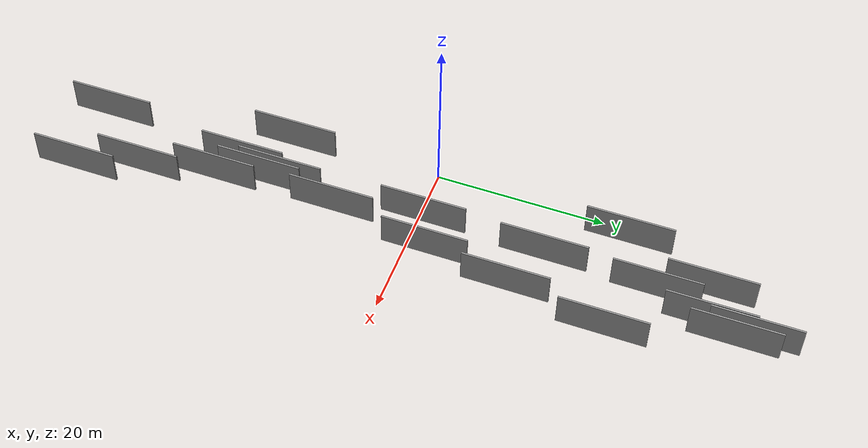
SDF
<sdf version="1.6">
 <world name="default">
  <scene>
   <sky><clouds><speed>12</speed></clouds></sky>
   <ambient>0.4 0.4 0.4 1</ambient>
   <background>0.7 0.7 0.7 1</background>
   <shadows>1</shadows>
  </scene>
  <gravity>0 0 -9.8066</gravity>
  <magnetic_field>6e-06 2.3e-05 -4.2e-05</magnetic_field>
  <physics default="0" name="default_physics" type="ode">
   <ode>
    <solver>
     <type>quick</type>
     <iters>10</iters>
     <sor>1.0</sor>
     <use_dynamic_moi_rescaling>0</use_dynamic_moi_rescaling>
    </solver>
    <constraints>
     <cfm>0</cfm>
     <erp>0.2</erp>
     <contact_max_correcting_vel>100</contact_max_correcting_vel>
     <contact_surface_layer>0.001</contact_surface_layer>
    </constraints>
   </ode>
   <max_step_size>0.004</max_step_size>
   <real_time_factor>1</real_time_factor>
   <real_time_update_rate>250</real_time_update_rate>
  </physics>
  <light name="sun" type="directional">
   <pose>0 0 10 0 0 0</pose>
   <diffuse>0.8 0.8 0.8 1</diffuse>
   <specular>0.2 0.2 0.2 1</specular>
   <attenuation>
    <range>1000</range>
    <constant>0.9</constant>
    <linear>0.01</linear>
    <quadratic>0.001</quadratic>
   </attenuation>
   <direction>-0.5 0.1 -0.9</direction>
  </light>
  <model name="grey_wall_1">
   <static>1</static>
   <pose>3.2157 -16.5060 2.5 0.000000 0.000000 1.570796</pose>
   <link name="link">
    <pose>0 0 2.00 0 0 0</pose>
    <collision name="collision"><geometry><box><size>10.00 0.2 4.00</size></box></geometry></collision>
    <visual name="visual">
     <cast_shadows>0</cast_shadows>
     <geometry><box><size>10.00 0.2 4.00</size></box></geometry>
     <material>
      <script>
       <uri>model://grey_wall/materials/scripts</uri>
       <uri>model://grey_wall/materials/textures</uri>
       <name>vrc/grey_wall</name>
      </script>
     </material>
    </visual>
   </link>
  </model>
  <model name="grey_wall_2">
   <static>1</static>
   <pose>3.6336 23.5785 2.5 0.000000 0.000000 1.570796</pose>
   <link name="link">
    <pose>0 0 2.00 0 0 0</pose>
    <collision name="collision"><geometry><box><size>10.00 0.2 4.00</size></box></geometry></collision>
    <visual name="visual">
     <cast_shadows>0</cast_shadows>
     <geometry><box><size>10.00 0.2 4.00</size></box></geometry>
     <material>
      <script>
       <uri>model://grey_wall/materials/scripts</uri>
       <uri>model://grey_wall/materials/textures</uri>
       <name>vrc/grey_wall</name>
      </script>
     </material>
    </visual>
   </link>
  </model>
  <model name="grey_wall_3">
   <static>1</static>
   <pose>12.9591 2.9089 2.5 0.000000 0.000000 1.570796</pose>
   <link name="link">
    <pose>0 0 2.00 0 0 0</pose>
    <collision name="collision"><geometry><box><size>10.00 0.2 4.00</size></box></geometry></collision>
    <visual name="visual">
     <cast_shadows>0</cast_shadows>
     <geometry><box><size>10.00 0.2 4.00</size></box></geometry>
     <material>
      <script>
       <uri>model://grey_wall/materials/scripts</uri>
       <uri>model://grey_wall/materials/textures</uri>
       <name>vrc/grey_wall</name>
      </script>
     </material>
    </visual>
   </link>
  </model>
  <model name="grey_wall_4">
   <static>1</static>
   <pose>11.2151 -23.1242 2.5 0.000000 0.000000 1.570796</pose>
   <link name="link">
    <pose>0 0 2.00 0 0 0</pose>
    <collision name="collision"><geometry><box><size>10.00 0.2 4.00</size></box></geometry></collision>
    <visual name="visual">
     <cast_shadows>0</cast_shadows>
     <geometry><box><size>10.00 0.2 4.00</size></box></geometry>
     <material>
      <script>
       <uri>model://grey_wall/materials/scripts</uri>
       <uri>model://grey_wall/materials/textures</uri>
       <name>vrc/grey_wall</name>
      </script>
     </material>
    </visual>
   </link>
  </model>
  <model name="grey_wall_5">
   <static>1</static>
   <pose>8.7948 1.2657 2.5 0.000000 0.000000 1.570796</pose>
   <link name="link">
    <pose>0 0 2.00 0 0 0</pose>
    <collision name="collision"><geometry><box><size>10.00 0.2 4.00</size></box></geometry></collision>
    <visual name="visual">
     <cast_shadows>0</cast_shadows>
     <geometry><box><size>10.00 0.2 4.00</size></box></geometry>
     <material>
      <script>
       <uri>model://grey_wall/materials/scripts</uri>
       <uri>model://grey_wall/materials/textures</uri>
       <name>vrc/grey_wall</name>
      </script>
     </material>
    </visual>
   </link>
  </model>
  <model name="grey_wall_6">
   <static>1</static>
   <pose>14.7367 12.7929 2.5 0.000000 0.000000 1.570796</pose>
   <link name="link">
    <pose>0 0 2.00 0 0 0</pose>
    <collision name="collision"><geometry><box><size>10.00 0.2 4.00</size></box></geometry></collision>
    <visual name="visual">
     <cast_shadows>0</cast_shadows>
     <geometry><box><size>10.00 0.2 4.00</size></box></geometry>
     <material>
      <script>
       <uri>model://grey_wall/materials/scripts</uri>
       <uri>model://grey_wall/materials/textures</uri>
       <name>vrc/grey_wall</name>
      </script>
     </material>
    </visual>
   </link>
  </model>
  <model name="grey_wall_7">
   <static>1</static>
   <pose>9.7365 28.2212 2.5 0.000000 0.000000 1.570796</pose>
   <link name="link">
    <pose>0 0 2.00 0 0 0</pose>
    <collision name="collision"><geometry><box><size>10.00 0.2 4.00</size></box></geometry></collision>
    <visual name="visual">
     <cast_shadows>0</cast_shadows>
     <geometry><box><size>10.00 0.2 4.00</size></box></geometry>
     <material>
      <script>
       <uri>model://grey_wall/materials/scripts</uri>
       <uri>model://grey_wall/materials/textures</uri>
       <name>vrc/grey_wall</name>
      </script>
     </material>
    </visual>
   </link>
  </model>
  <model name="grey_wall_8">
   <static>1</static>
   <pose>9.7414 -18.2163 2.5 0.000000 0.000000 1.570796</pose>
   <link name="link">
    <pose>0 0 2.00 0 0 0</pose>
    <collision name="collision"><geometry><box><size>10.00 0.2 4.00</size></box></geometry></collision>
    <visual name="visual">
     <cast_shadows>0</cast_shadows>
     <geometry><box><size>10.00 0.2 4.00</size></box></geometry>
     <material>
      <script>
       <uri>model://grey_wall/materials/scripts</uri>
       <uri>model://grey_wall/materials/textures</uri>
       <name>vrc/grey_wall</name>
      </script>
     </material>
    </visual>
   </link>
  </model>
  <model name="grey_wall_9">
   <static>1</static>
   <pose>13.2367 37.5575 2.5 0.000000 0.000000 1.570796</pose>
   <link name="link">
    <pose>0 0 2.00 0 0 0</pose>
    <collision name="collision"><geometry><box><size>10.00 0.2 4.00</size></box></geometry></collision>
    <visual name="visual">
     <cast_shadows>0</cast_shadows>
     <geometry><box><size>10.00 0.2 4.00</size></box></geometry>
     <material>
      <script>
       <uri>model://grey_wall/materials/scripts</uri>
       <uri>model://grey_wall/materials/textures</uri>
       <name>vrc/grey_wall</name>
      </script>
     </material>
    </visual>
   </link>
  </model>
  <model name="grey_wall_10">
   <static>1</static>
   <pose>8.2587 -20.9120 2.5 0.000000 0.000000 1.570796</pose>
   <link name="link">
    <pose>0 0 2.00 0 0 0</pose>
    <collision name="collision"><geometry><box><size>10.00 0.2 4.00</size></box></geometry></collision>
    <visual name="visual">
     <cast_shadows>0</cast_shadows>
     <geometry><box><size>10.00 0.2 4.00</size></box></geometry>
     <material>
      <script>
       <uri>model://grey_wall/materials/scripts</uri>
       <uri>model://grey_wall/materials/textures</uri>
       <name>vrc/grey_wall</name>
      </script>
     </material>
    </visual>
   </link>
  </model>
  <model name="grey_wall_11">
   <static>1</static>
   <pose>6.3979 -38.4848 2.5 0.000000 0.000000 1.570796</pose>
   <link name="link">
    <pose>0 0 2.00 0 0 0</pose>
    <collision name="collision"><geometry><box><size>10.00 0.2 4.00</size></box></geometry></collision>
    <visual name="visual">
     <cast_shadows>0</cast_shadows>
     <geometry><box><size>10.00 0.2 4.00</size></box></geometry>
     <material>
      <script>
       <uri>model://grey_wall/materials/scripts</uri>
       <uri>model://grey_wall/materials/textures</uri>
       <name>vrc/grey_wall</name>
      </script>
     </material>
    </visual>
   </link>
  </model>
  <model name="grey_wall_12">
   <static>1</static>
   <pose>16.7571 24.2096 2.5 0.000000 0.000000 1.570796</pose>
   <link name="link">
    <pose>0 0 2.00 0 0 0</pose>
    <collision name="collision"><geometry><box><size>10.00 0.2 4.00</size></box></geometry></collision>
    <visual name="visual">
     <cast_shadows>0</cast_shadows>
     <geometry><box><size>10.00 0.2 4.00</size></box></geometry>
     <material>
      <script>
       <uri>model://grey_wall/materials/scripts</uri>
       <uri>model://grey_wall/materials/textures</uri>
       <name>vrc/grey_wall</name>
      </script>
     </material>
    </visual>
   </link>
  </model>
  <model name="grey_wall_13">
   <static>1</static>
   <pose>10.8888 -8.8937 2.5 0.000000 0.000000 1.570796</pose>
   <link name="link">
    <pose>0 0 2.00 0 0 0</pose>
    <collision name="collision"><geometry><box><size>10.00 0.2 4.00</size></box></geometry></collision>
    <visual name="visual">
     <cast_shadows>0</cast_shadows>
     <geometry><box><size>10.00 0.2 4.00</size></box></geometry>
     <material>
      <script>
       <uri>model://grey_wall/materials/scripts</uri>
       <uri>model://grey_wall/materials/textures</uri>
       <name>vrc/grey_wall</name>
      </script>
     </material>
    </visual>
   </link>
  </model>
  <model name="grey_wall_14">
   <static>1</static>
   <pose>12.1354 39.4967 2.5 0.000000 0.000000 1.570796</pose>
   <link name="link">
    <pose>0 0 2.00 0 0 0</pose>
    <collision name="collision"><geometry><box><size>10.00 0.2 4.00</size></box></geometry></collision>
    <visual name="visual">
     <cast_shadows>0</cast_shadows>
     <geometry><box><size>10.00 0.2 4.00</size></box></geometry>
     <material>
      <script>
       <uri>model://grey_wall/materials/scripts</uri>
       <uri>model://grey_wall/materials/textures</uri>
       <name>vrc/grey_wall</name>
      </script>
     </material>
    </visual>
   </link>
  </model>
  <model name="grey_wall_15">
   <static>1</static>
   <pose>12.9927 -31.8106 2.5 0.000000 0.000000 1.570796</pose>
   <link name="link">
    <pose>0 0 2.00 0 0 0</pose>
    <collision name="collision"><geometry><box><size>10.00 0.2 4.00</size></box></geometry></collision>
    <visual name="visual">
     <cast_shadows>0</cast_shadows>
     <geometry><box><size>10.00 0.2 4.00</size></box></geometry>
     <material>
      <script>
       <uri>model://grey_wall/materials/scripts</uri>
       <uri>model://grey_wall/materials/textures</uri>
       <name>vrc/grey_wall</name>
      </script>
     </material>
    </visual>
   </link>
  </model>
  <model name="grey_wall_16">
   <static>1</static>
   <pose>9.2620 15.4236 2.5 0.000000 0.000000 1.570796</pose>
   <link name="link">
    <pose>0 0 2.00 0 0 0</pose>
    <collision name="collision"><geometry><box><size>10.00 0.2 4.00</size></box></geometry></collision>
    <visual name="visual">
     <cast_shadows>0</cast_shadows>
     <geometry><box><size>10.00 0.2 4.00</size></box></geometry>
     <material>
      <script>
       <uri>model://grey_wall/materials/scripts</uri>
       <uri>model://grey_wall/materials/textures</uri>
       <name>vrc/grey_wall</name>
      </script>
     </material>
    </visual>
   </link>
  </model>
  <model name="grey_wall_17">
   <static>1</static>
   <pose>7.6614 33.7399 2.5 0.000000 0.000000 1.570796</pose>
   <link name="link">
    <pose>0 0 2.00 0 0 0</pose>
    <collision name="collision"><geometry><box><size>10.00 0.2 4.00</size></box></geometry></collision>
    <visual name="visual">
     <cast_shadows>0</cast_shadows>
     <geometry><box><size>10.00 0.2 4.00</size></box></geometry>
     <material>
      <script>
       <uri>model://grey_wall/materials/scripts</uri>
       <uri>model://grey_wall/materials/textures</uri>
       <name>vrc/grey_wall</name>
      </script>
     </material>
    </visual>
   </link>
  </model>
  <model name="grey_wall_18">
   <static>1</static>
   <pose>11.8549 34.5748 2.5 0.000000 0.000000 1.570796</pose>
   <link name="link">
    <pose>0 0 2.00 0 0 0</pose>
    <collision name="collision"><geometry><box><size>10.00 0.2 4.00</size></box></geometry></collision>
    <visual name="visual">
     <cast_shadows>0</cast_shadows>
     <geometry><box><size>10.00 0.2 4.00</size></box></geometry>
     <material>
      <script>
       <uri>model://grey_wall/materials/scripts</uri>
       <uri>model://grey_wall/materials/textures</uri>
       <name>vrc/grey_wall</name>
      </script>
     </material>
    </visual>
   </link>
  </model>
  <model name="grey_wall_19">
   <static>1</static>
   <pose>8.9629 -15.9608 2.5 0.000000 0.000000 1.570796</pose>
   <link name="link">
    <pose>0 0 2.00 0 0 0</pose>
    <collision name="collision"><geometry><box><size>10.00 0.2 4.00</size></box></geometry></collision>
    <visual name="visual">
     <cast_shadows>0</cast_shadows>
     <geometry><box><size>10.00 0.2 4.00</size></box></geometry>
     <material>
      <script>
       <uri>model://grey_wall/materials/scripts</uri>
       <uri>model://grey_wall/materials/textures</uri>
       <name>vrc/grey_wall</name>
      </script>
     </material>
    </visual>
   </link>
  </model>
  <model name="grey_wall_20">
   <static>1</static>
   <pose>15.4464 -38.6101 2.5 0.000000 0.000000 1.570796</pose>
   <link name="link">
    <pose>0 0 2.00 0 0 0</pose>
    <collision name="collision"><geometry><box><size>10.00 0.2 4.00</size></box></geometry></collision>
    <visual name="visual">
     <cast_shadows>0</cast_shadows>
     <geometry><box><size>10.00 0.2 4.00</size></box></geometry>
     <material>
      <script>
       <uri>model://grey_wall/materials/scripts</uri>
       <uri>model://grey_wall/materials/textures</uri>
       <name>vrc/grey_wall</name>
      </script>
     </material>
    </visual>
   </link>
  </model>
 </world>
</sdf>
